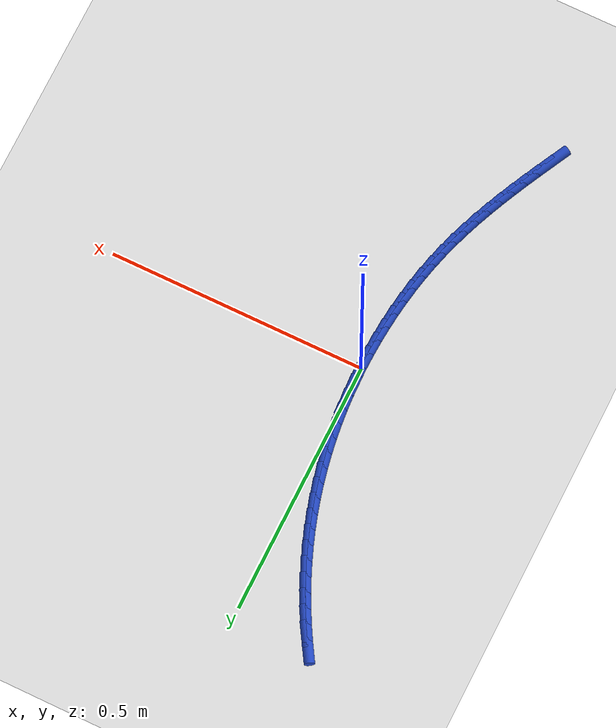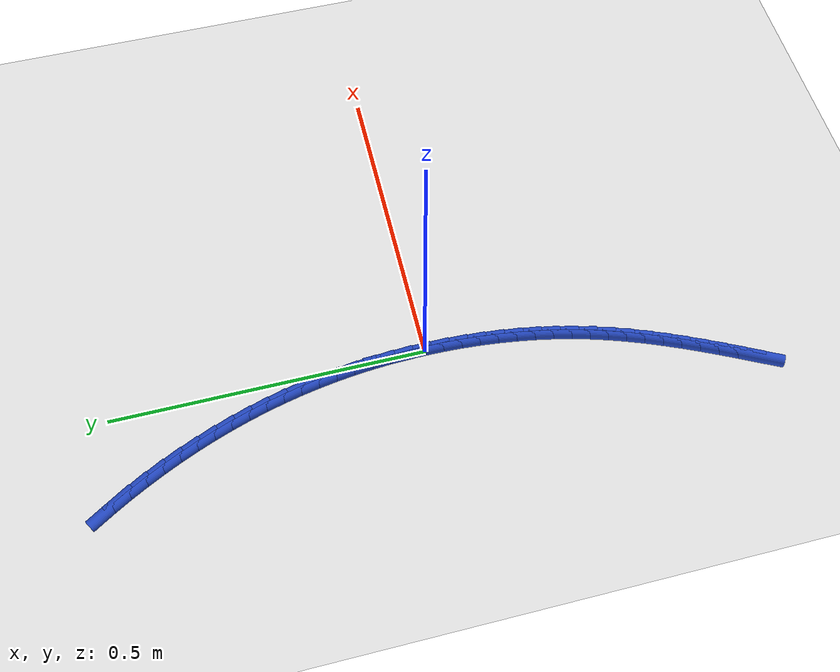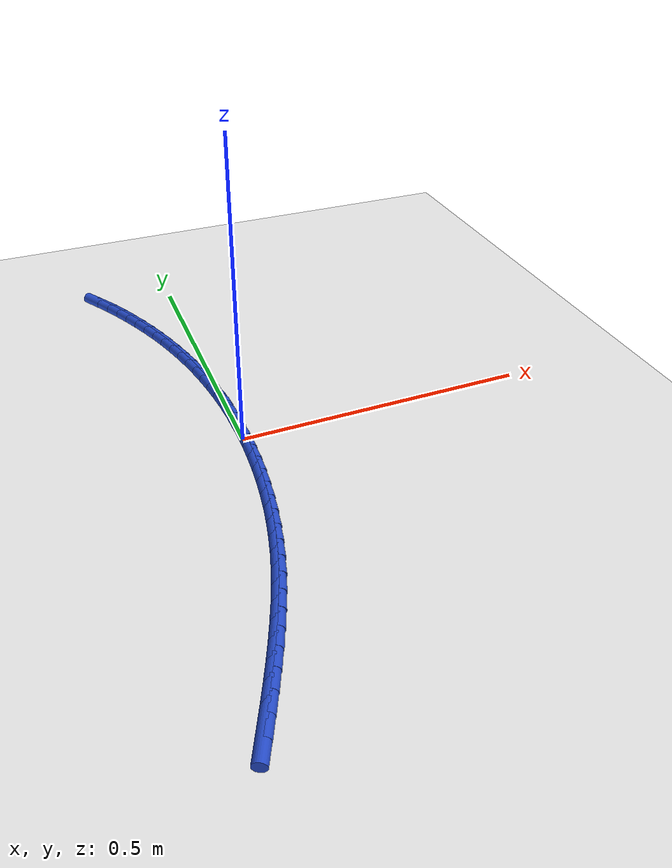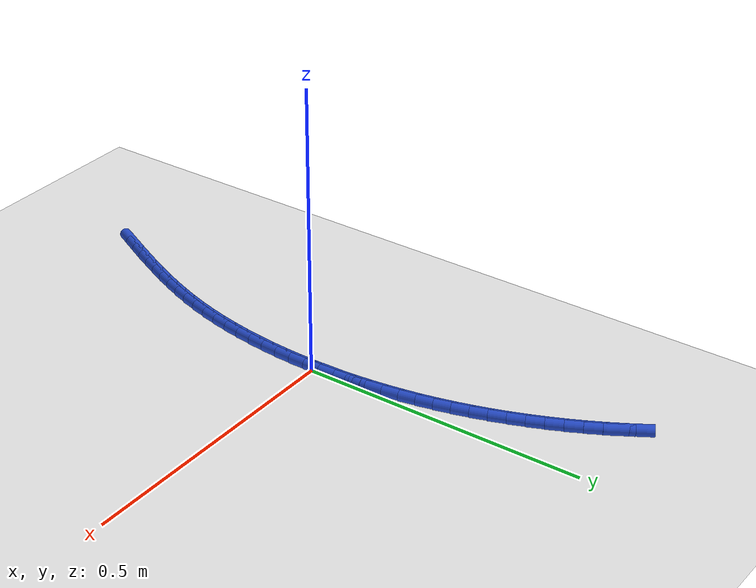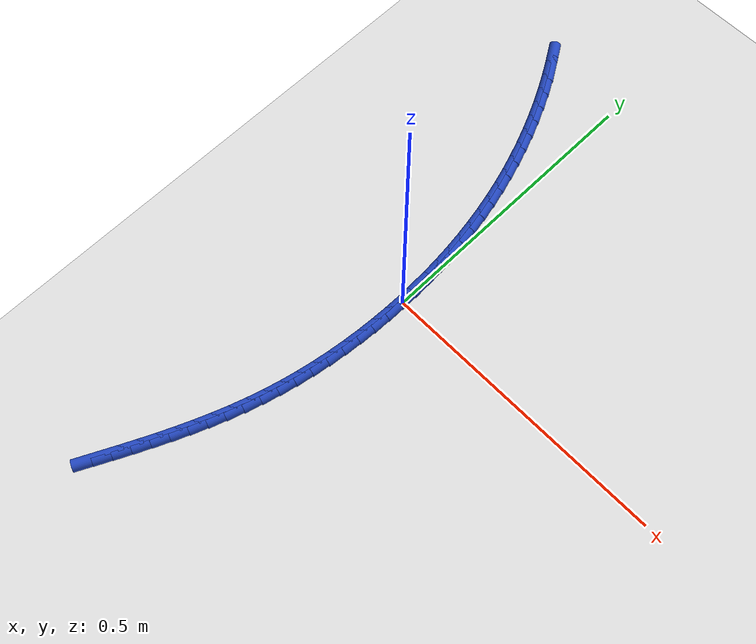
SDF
<sdf version="1.6">
 <world name="default">
  <model name="ground_plane">
   <static>1</static>
   <link name="link">
    <collision name="collision">
     <geometry><plane><normal>0 0 1</normal><size>100 100</size></plane></geometry>
     <surface><friction><ode><mu>100</mu><mu2>50</mu2></ode></friction></surface>
    </collision>
    <visual name="visual">
     <cast_shadows>0</cast_shadows>
     <geometry><plane><normal>0 0 1</normal><size>100 100</size></plane></geometry>
     <material>
      <script><uri>file://media/materials/scripts/gazebo.material</uri><name>Gazebo/WhiteGlow</name></script>
     </material>
    </visual>
   </link>
  </model>
  <model name="line">
   <link name="link_0">
    <pose>1.0408340855860843e-17 -8.326672684688674e-17 0.01 0 1.57 -1.5555609442046128</pose>
    <collision name="collision">
     <geometry><cylinder><radius>0.01</radius><length>0.08</length></cylinder></geometry>
    </collision>
    <visual name="visual">
     <material>
      <script><name>Gazebo/Blue</name><uri>file://media/materials/scripts/gazebo.material</uri></script>
     </material>
     <geometry><cylinder><radius>0.01</radius><length>0.08</length></cylinder></geometry>
    </visual>
   </link>
   <link name="link_1">
    <pose>-0.0004483978259181032 0.02942906941494574 0.01 0 1.57 -1.5272894492918065</pose>
    <collision name="collision">
     <geometry><cylinder><radius>0.01</radius><length>0.08</length></cylinder></geometry>
    </collision>
    <visual name="visual">
     <material>
      <script><name>Gazebo/Blue</name><uri>file://media/materials/scripts/gazebo.material</uri></script>
     </material>
     <geometry><cylinder><radius>0.01</radius><length>0.08</length></cylinder></geometry>
    </visual>
   </link>
   <link name="link_2">
    <pose>-0.0017266899508206668 0.05879190946905788 0.01 0 1.57 -1.4985885119974234</pose>
    <collision name="collision">
     <geometry><cylinder><radius>0.01</radius><length>0.08</length></cylinder></geometry>
    </collision>
    <visual name="visual">
     <material>
      <script><name>Gazebo/Blue</name><uri>file://media/materials/scripts/gazebo.material</uri></script>
     </material>
     <geometry><cylinder><radius>0.01</radius><length>0.08</length></cylinder></geometry>
    </visual>
   </link>
   <link name="link_3">
    <pose>-0.0038447721193070224 0.08807405420118282 0.01 0 1.57 -1.4694633829766284</pose>
    <collision name="collision">
     <geometry><cylinder><radius>0.01</radius><length>0.08</length></cylinder></geometry>
    </collision>
    <visual name="visual">
     <material>
      <script><name>Gazebo/Blue</name><uri>file://media/materials/scripts/gazebo.material</uri></script>
     </material>
     <geometry><cylinder><radius>0.01</radius><length>0.08</length></cylinder></geometry>
    </visual>
   </link>
   <link name="link_4">
    <pose>-0.006812540075976516 0.11726103765016704 0.01 0 1.57 -1.4399222260830222</pose>
    <collision name="collision">
     <geometry><cylinder><radius>0.01</radius><length>0.08</length></cylinder></geometry>
    </collision>
    <visual name="visual">
     <material>
      <script><name>Gazebo/Blue</name><uri>file://media/materials/scripts/gazebo.material</uri></script>
     </material>
     <geometry><cylinder><radius>0.01</radius><length>0.08</length></cylinder></geometry>
    </visual>
   </link>
   <link name="link_5">
    <pose>-0.010639889565428492 0.146338393854857 0.01 0 1.57 -1.409976273621533</pose>
    <collision name="collision">
     <geometry><cylinder><radius>0.01</radius><length>0.08</length></cylinder></geometry>
    </collision>
    <visual name="visual">
     <material>
      <script><name>Gazebo/Blue</name><uri>file://media/materials/scripts/gazebo.material</uri></script>
     </material>
     <geometry><cylinder><radius>0.01</radius><length>0.08</length></cylinder></geometry>
    </visual>
   </link>
   <link name="link_6">
    <pose>-0.015336716332262306 0.1752916568540992 0.01 0 1.57 -1.3796399552273813</pose>
    <collision name="collision">
     <geometry><cylinder><radius>0.01</radius><length>0.08</length></cylinder></geometry>
    </collision>
    <visual name="visual">
     <material>
      <script><name>Gazebo/Blue</name><uri>file://media/materials/scripts/gazebo.material</uri></script>
     </material>
     <geometry><cylinder><radius>0.01</radius><length>0.08</length></cylinder></geometry>
    </visual>
   </link>
   <link name="link_7">
    <pose>-0.020912916121077284 0.20410636068674004 0.01 0 1.57 -1.348930993899488</pose>
    <collision name="collision">
     <geometry><cylinder><radius>0.01</radius><length>0.08</length></cylinder></geometry>
    </collision>
    <visual name="visual">
     <material>
      <script><name>Gazebo/Blue</name><uri>file://media/materials/scripts/gazebo.material</uri></script>
     </material>
     <geometry><cylinder><radius>0.01</radius><length>0.08</length></cylinder></geometry>
    </visual>
   </link>
   <link name="link_8">
    <pose>-0.027378384676472786 0.23276803939162607 0.01 0 1.57 -1.3178705495063912</pose>
    <collision name="collision">
     <geometry><cylinder><radius>0.01</radius><length>0.08</length></cylinder></geometry>
    </collision>
    <visual name="visual">
     <material>
      <script><name>Gazebo/Blue</name><uri>file://media/materials/scripts/gazebo.material</uri></script>
     </material>
     <geometry><cylinder><radius>0.01</radius><length>0.08</length></cylinder></geometry>
    </visual>
   </link>
   <link name="link_9">
    <pose>-0.03474301466962922 0.2612622253136308 0.01 0 1.57 -1.286651770982013</pose>
    <collision name="collision">
     <geometry><cylinder><radius>0.01</radius><length>0.08</length></cylinder></geometry>
    </collision>
    <visual name="visual">
     <material>
      <script><name>Gazebo/Blue</name><uri>file://media/materials/scripts/gazebo.material</uri></script>
     </material>
     <geometry><cylinder><radius>0.01</radius><length>0.08</length></cylinder></geometry>
    </visual>
   </link>
   <link name="link_10">
    <pose>-0.04301051952280737 0.2895710449877822 0.01 0 1.57 -1.2557895713142748</pose>
    <collision name="collision">
     <geometry><cylinder><radius>0.01</radius><length>0.08</length></cylinder></geometry>
    </collision>
    <visual name="visual">
     <material>
      <script><name>Gazebo/Blue</name><uri>file://media/materials/scripts/gazebo.material</uri></script>
     </material>
     <geometry><cylinder><radius>0.01</radius><length>0.08</length></cylinder></geometry>
    </visual>
   </link>
   <link name="link_11">
    <pose>-0.05216548107256712 0.3176660802140142 0.01 0 1.57 -1.2253354255580937</pose>
    <collision name="collision">
     <geometry><cylinder><radius>0.01</radius><length>0.08</length></cylinder></geometry>
    </collision>
    <visual name="visual">
     <material>
      <script><name>Gazebo/Blue</name><uri>file://media/materials/scripts/gazebo.material</uri></script>
     </material>
     <geometry><cylinder><radius>0.01</radius><length>0.08</length></cylinder></geometry>
    </visual>
   </link>
   <link name="link_12">
    <pose>-0.062188789829416995 0.3455168782481318 0.01 0 1.57 -1.1952357554981379</pose>
    <collision name="collision">
     <geometry><cylinder><radius>0.01</radius><length>0.08</length></cylinder></geometry>
    </collision>
    <visual name="visual">
     <material>
      <script><name>Gazebo/Blue</name><uri>file://media/materials/scripts/gazebo.material</uri></script>
     </material>
     <geometry><cylinder><radius>0.01</radius><length>0.08</length></cylinder></geometry>
    </visual>
   </link>
   <link name="link_13">
    <pose>-0.07306133630386541 0.37309298634594 0.01 0 1.57 -1.1654362908679599</pose>
    <collision name="collision">
     <geometry><cylinder><radius>0.01</radius><length>0.08</length></cylinder></geometry>
    </collision>
    <visual name="visual">
     <material>
      <script><name>Gazebo/Blue</name><uri>file://media/materials/scripts/gazebo.material</uri></script>
     </material>
     <geometry><cylinder><radius>0.01</radius><length>0.08</length></cylinder></geometry>
    </visual>
   </link>
   <link name="link_14">
    <pose>-0.08476401100642092 0.400363951763244 0.01 0 1.57 -1.1358822310072698</pose>
    <collision name="collision">
     <geometry><cylinder><radius>0.01</radius><length>0.08</length></cylinder></geometry>
    </collision>
    <visual name="visual">
     <material>
      <script><name>Gazebo/Blue</name><uri>file://media/materials/scripts/gazebo.material</uri></script>
     </material>
     <geometry><cylinder><radius>0.01</radius><length>0.08</length></cylinder></geometry>
    </visual>
   </link>
   <link name="link_15">
    <pose>-0.09727770444759203 0.42729932175584906 0.01 0 1.57 -1.1065183614631748</pose>
    <collision name="collision">
     <geometry><cylinder><radius>0.01</radius><length>0.08</length></cylinder></geometry>
    </collision>
    <visual name="visual">
     <material>
      <script><name>Gazebo/Blue</name><uri>file://media/materials/scripts/gazebo.material</uri></script>
     </material>
     <geometry><cylinder><radius>0.01</radius><length>0.08</length></cylinder></geometry>
    </visual>
   </link>
   <link name="link_16">
    <pose>-0.1105833071378872 0.45386864357956 0.01 0 1.57 -1.0772891339735309</pose>
    <collision name="collision">
     <geometry><cylinder><radius>0.01</radius><length>0.08</length></cylinder></geometry>
    </collision>
    <visual name="visual">
     <material>
      <script><name>Gazebo/Blue</name><uri>file://media/materials/scripts/gazebo.material</uri></script>
     </material>
     <geometry><cylinder><radius>0.01</radius><length>0.08</length></cylinder></geometry>
    </visual>
   </link>
   <link name="link_17">
    <pose>-0.12466170958781495 0.4800414644901822 0.01 0 1.57 -1.0481387179529276</pose>
    <collision name="collision">
     <geometry><cylinder><radius>0.01</radius><length>0.08</length></cylinder></geometry>
    </collision>
    <visual name="visual">
     <material>
      <script><name>Gazebo/Blue</name><uri>file://media/materials/scripts/gazebo.material</uri></script>
     </material>
     <geometry><cylinder><radius>0.01</radius><length>0.08</length></cylinder></geometry>
    </visual>
   </link>
   <link name="link_18">
    <pose>-0.13949380230788375 0.5057873317435205 0.01 0 1.57 -1.019011031316761</pose>
    <collision name="collision">
     <geometry><cylinder><radius>0.01</radius><length>0.08</length></cylinder></geometry>
    </collision>
    <visual name="visual">
     <material>
      <script><name>Gazebo/Blue</name><uri>file://media/materials/scripts/gazebo.material</uri></script>
     </material>
     <geometry><cylinder><radius>0.01</radius><length>0.08</length></cylinder></geometry>
    </visual>
   </link>
   <link name="link_222">
    <pose>-0.136314828950509 -0.504641820579009 0.01 0 1.57 1.1070221972640317</pose>
    <collision name="collision">
     <geometry><cylinder><radius>0.01</radius><length>0.08</length></cylinder></geometry>
    </collision>
    <visual name="visual">
     <material>
      <script><name>Gazebo/Blue</name><uri>file://media/materials/scripts/gazebo.material</uri></script>
     </material>
     <geometry><cylinder><radius>0.01</radius><length>0.08</length></cylinder></geometry>
    </visual>
   </link>
   <link name="link_223">
    <pose>-0.12284623428769002 -0.4777131493666635 0.01 0 1.57 1.116654272887144</pose>
    <collision name="collision">
     <geometry><cylinder><radius>0.01</radius><length>0.08</length></cylinder></geometry>
    </collision>
    <visual name="visual">
     <material>
      <script><name>Gazebo/Blue</name><uri>file://media/materials/scripts/gazebo.material</uri></script>
     </material>
     <geometry><cylinder><radius>0.01</radius><length>0.08</length></cylinder></geometry>
    </visual>
   </link>
   <link name="link_224">
    <pose>-0.10975683486415562 -0.45090016480751305 0.01 0 1.57 1.1295438061648315</pose>
    <collision name="collision">
     <geometry><cylinder><radius>0.01</radius><length>0.08</length></cylinder></geometry>
    </collision>
    <visual name="visual">
     <material>
      <script><name>Gazebo/Blue</name><uri>file://media/materials/scripts/gazebo.material</uri></script>
     </material>
     <geometry><cylinder><radius>0.01</radius><length>0.08</length></cylinder></geometry>
    </visual>
   </link>
   <link name="link_225">
    <pose>-0.09711806386733761 -0.42414077068389966 0.01 0 1.57 1.1457405438671429</pose>
    <collision name="collision">
     <geometry><cylinder><radius>0.01</radius><length>0.08</length></cylinder></geometry>
    </collision>
    <visual name="visual">
     <material>
      <script><name>Gazebo/Blue</name><uri>file://media/materials/scripts/gazebo.material</uri></script>
     </material>
     <geometry><cylinder><radius>0.01</radius><length>0.08</length></cylinder></geometry>
    </visual>
   </link>
   <link name="link_226">
    <pose>-0.08500147838602087 -0.39737268107734747 0.01 0 1.57 1.1652630830545379</pose>
    <collision name="collision">
     <geometry><cylinder><radius>0.01</radius><length>0.08</length></cylinder></geometry>
    </collision>
    <visual name="visual">
     <material>
      <script><name>Gazebo/Blue</name><uri>file://media/materials/scripts/gazebo.material</uri></script>
     </material>
     <geometry><cylinder><radius>0.01</radius><length>0.08</length></cylinder></geometry>
    </visual>
   </link>
   <link name="link_227">
    <pose>-0.07347863550899038 -0.3705336100693809 0.01 0 1.57 1.1880990838364052</pose>
    <collision name="collision">
     <geometry><cylinder><radius>0.01</radius><length>0.08</length></cylinder></geometry>
    </collision>
    <visual name="visual">
     <material>
      <script><name>Gazebo/Blue</name><uri>file://media/materials/scripts/gazebo.material</uri></script>
     </material>
     <geometry><cylinder><radius>0.01</radius><length>0.08</length></cylinder></geometry>
    </visual>
   </link>
   <link name="link_228">
    <pose>-0.06262109232503094 -0.34356127174152395 0.01 0 1.57 1.2141983305455453</pose>
    <collision name="collision">
     <geometry><cylinder><radius>0.01</radius><length>0.08</length></cylinder></geometry>
    </collision>
    <visual name="visual">
     <material>
      <script><name>Gazebo/Blue</name><uri>file://media/materials/scripts/gazebo.material</uri></script>
     </material>
     <geometry><cylinder><radius>0.01</radius><length>0.08</length></cylinder></geometry>
    </visual>
   </link>
   <link name="link_229">
    <pose>-0.05250040592292742 -0.316393380175301 0.01 0 1.57 1.2434656375185782</pose>
    <collision name="collision">
     <geometry><cylinder><radius>0.01</radius><length>0.08</length></cylinder></geometry>
    </collision>
    <visual name="visual">
     <material>
      <script><name>Gazebo/Blue</name><uri>file://media/materials/scripts/gazebo.material</uri></script>
     </material>
     <geometry><cylinder><radius>0.01</radius><length>0.08</length></cylinder></geometry>
    </visual>
   </link>
   <link name="link_230">
    <pose>-0.043188133391464496 -0.28896764945223513 0.01 0 1.57 1.2757543164968588</pose>
    <collision name="collision">
     <geometry><cylinder><radius>0.01</radius><length>0.08</length></cylinder></geometry>
    </collision>
    <visual name="visual">
     <material>
      <script><name>Gazebo/Blue</name><uri>file://media/materials/scripts/gazebo.material</uri></script>
     </material>
     <geometry><cylinder><radius>0.01</radius><length>0.08</length></cylinder></geometry>
    </visual>
   </link>
   <link name="link_231">
    <pose>-0.03475583181942754 -0.26122179365385223 0.01 0 1.57 1.3103678905609166</pose>
    <collision name="collision">
     <geometry><cylinder><radius>0.01</radius><length>0.08</length></cylinder></geometry>
    </collision>
    <visual name="visual">
     <material>
      <script><name>Gazebo/Blue</name><uri>file://media/materials/scripts/gazebo.material</uri></script>
     </material>
     <geometry><cylinder><radius>0.01</radius><length>0.08</length></cylinder></geometry>
    </visual>
   </link>
   <link name="link_232">
    <pose>-0.027263985970970996 -0.23310772873681906 0.01 0 1.57 1.3446198513206655</pose>
    <collision name="collision">
     <geometry><cylinder><radius>0.01</radius><length>0.08</length></cylinder></geometry>
    </collision>
    <visual name="visual">
     <material>
      <script><name>Gazebo/Blue</name><uri>file://media/materials/scripts/gazebo.material</uri></script>
     </material>
     <geometry><cylinder><radius>0.01</radius><length>0.08</length></cylinder></geometry>
    </visual>
   </link>
   <link name="link_233">
    <pose>-0.020715694423111972 -0.20465097683283026 0.01 0 1.57 1.377747468046655</pose>
    <collision name="collision">
     <geometry><cylinder><radius>0.01</radius><length>0.08</length></cylinder></geometry>
    </collision>
    <visual name="visual">
     <material>
      <script><name>Gazebo/Blue</name><uri>file://media/materials/scripts/gazebo.material</uri></script>
     </material>
     <geometry><cylinder><radius>0.01</radius><length>0.08</length></cylinder></geometry>
    </visual>
   </link>
   <link name="link_234">
    <pose>-0.015095520774093974 -0.17590083389372405 0.01 0 1.57 1.4098408636591884</pose>
    <collision name="collision">
     <geometry><cylinder><radius>0.01</radius><length>0.08</length></cylinder></geometry>
    </collision>
    <visual name="visual">
     <material>
      <script><name>Gazebo/Blue</name><uri>file://media/materials/scripts/gazebo.material</uri></script>
     </material>
     <geometry><cylinder><radius>0.01</radius><length>0.08</length></cylinder></geometry>
    </visual>
   </link>
   <link name="link_235">
    <pose>-0.01038801940328043 -0.1469066076959 0.01 0 1.57 1.4409922729265028</pose>
    <collision name="collision">
     <geometry><cylinder><radius>0.01</radius><length>0.08</length></cylinder></geometry>
    </collision>
    <visual name="visual">
     <material>
      <script><name>Gazebo/Blue</name><uri>file://media/materials/scripts/gazebo.material</uri></script>
     </material>
     <geometry><cylinder><radius>0.01</radius><length>0.08</length></cylinder></geometry>
    </visual>
   </link>
   <link name="link_236">
    <pose>-0.0065777446900347845 -0.11771760601575774 0.01 0 1.57 1.4712948599436768</pose>
    <collision name="collision">
     <geometry><cylinder><radius>0.01</radius><length>0.08</length></cylinder></geometry>
    </collision>
    <visual name="visual">
     <material>
      <script><name>Gazebo/Blue</name><uri>file://media/materials/scripts/gazebo.material</uri></script>
     </material>
     <geometry><cylinder><radius>0.01</radius><length>0.08</length></cylinder></geometry>
    </visual>
   </link>
   <link name="link_237">
    <pose>-0.003649251013720476 -0.08838313662969706 0.01 0 1.57 1.5008422200288551</pose>
    <collision name="collision">
     <geometry><cylinder><radius>0.01</radius><length>0.08</length></cylinder></geometry>
    </collision>
    <visual name="visual">
     <material>
      <script><name>Gazebo/Blue</name><uri>file://media/materials/scripts/gazebo.material</uri></script>
     </material>
     <geometry><cylinder><radius>0.01</radius><length>0.08</length></cylinder></geometry>
    </visual>
   </link>
   <link name="link_238">
    <pose>-0.0015870927537009012 -0.058952507314116775 0.01 0 1.57 1.5297281163109697</pose>
    <collision name="collision">
     <geometry><cylinder><radius>0.01</radius><length>0.08</length></cylinder></geometry>
    </collision>
    <visual name="visual">
     <material>
      <script><name>Gazebo/Blue</name><uri>file://media/materials/scripts/gazebo.material</uri></script>
     </material>
     <geometry><cylinder><radius>0.01</radius><length>0.08</length></cylinder></geometry>
    </visual>
   </link>
   <link name="link_239">
    <pose>-0.00037582428933960856 -0.02947502584541808 0.01 0 1.57 1.5580464168745825</pose>
    <collision name="collision">
     <geometry><cylinder><radius>0.01</radius><length>0.08</length></cylinder></geometry>
    </collision>
    <visual name="visual">
     <material>
      <script><name>Gazebo/Blue</name><uri>file://media/materials/scripts/gazebo.material</uri></script>
     </material>
     <geometry><cylinder><radius>0.01</radius><length>0.08</length></cylinder></geometry>
    </visual>
   </link>
   <link name="link_240">
    <pose>2.42861286636753e-17 1.1796119636642288e-16 0.01 0 1.57 -1.555701449755682</pose>
    <collision name="collision">
     <geometry><cylinder><radius>0.01</radius><length>0.08</length></cylinder></geometry>
    </collision>
    <visual name="visual">
     <material>
      <script><name>Gazebo/Blue</name><uri>file://media/materials/scripts/gazebo.material</uri></script>
     </material>
     <geometry><cylinder><radius>0.01</radius><length>0.08</length></cylinder></geometry>
    </visual>
   </link>
   <link name="link_241">
    <pose>-0.00044417426504544076 0.02942326244573817 0.01 0 1.57 -1.528235622203755</pose>
    <collision name="collision">
     <geometry><cylinder><radius>0.01</radius><length>0.08</length></cylinder></geometry>
    </collision>
    <visual name="visual">
     <material>
      <script><name>Gazebo/Blue</name><uri>file://media/materials/scripts/gazebo.material</uri></script>
     </material>
     <geometry><cylinder><radius>0.01</radius><length>0.08</length></cylinder></geometry>
    </visual>
   </link>
   <link name="link_242">
    <pose>-0.0016929014638394427 0.058745453715396384 0.01 0 1.57 -1.5419867259599243</pose>
    <collision name="collision">
     <geometry><cylinder><radius>0.01</radius><length>0.08</length></cylinder></geometry>
    </collision>
    <visual name="visual">
     <material>
      <script><name>Gazebo/Blue</name><uri>file://media/materials/scripts/gazebo.material</uri></script>
     </material>
     <geometry><cylinder><radius>0.01</radius><length>0.08</length></cylinder></geometry>
    </visual>
   </link>
  </model>
 </world>
</sdf>
